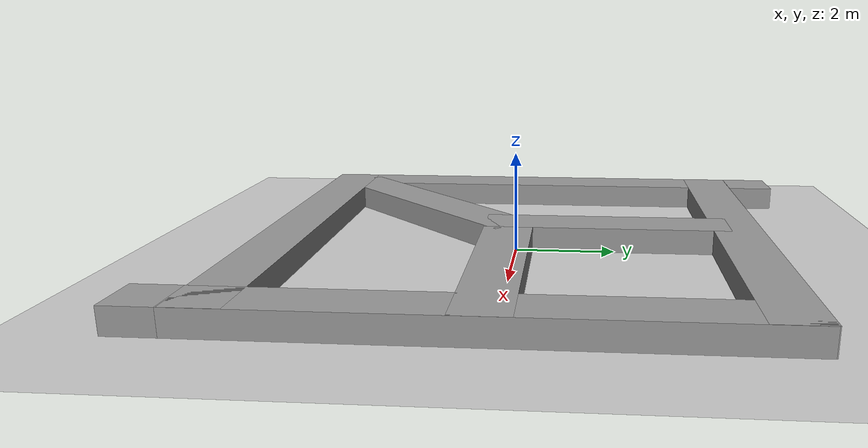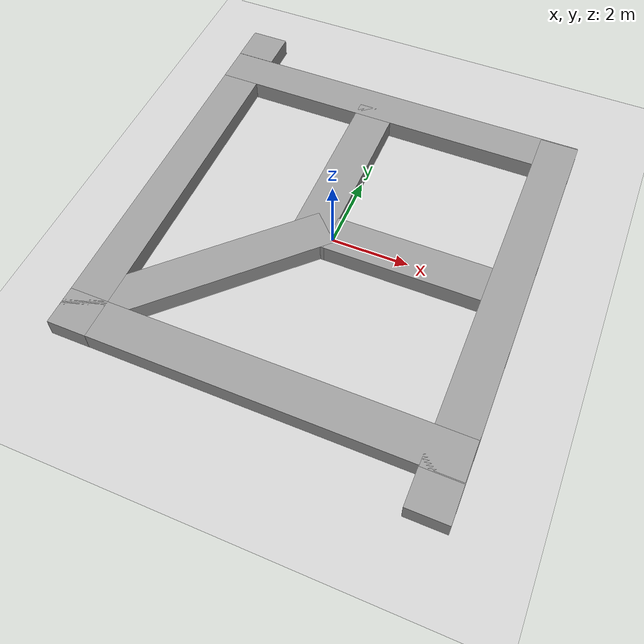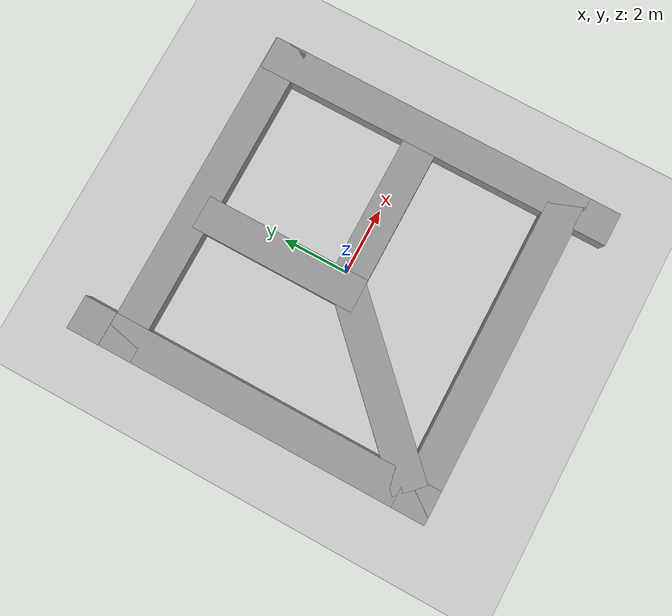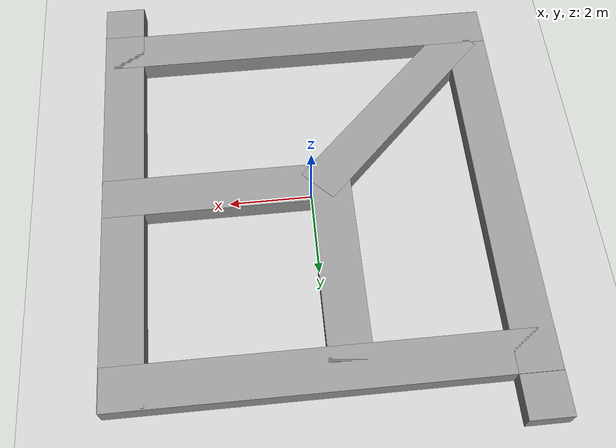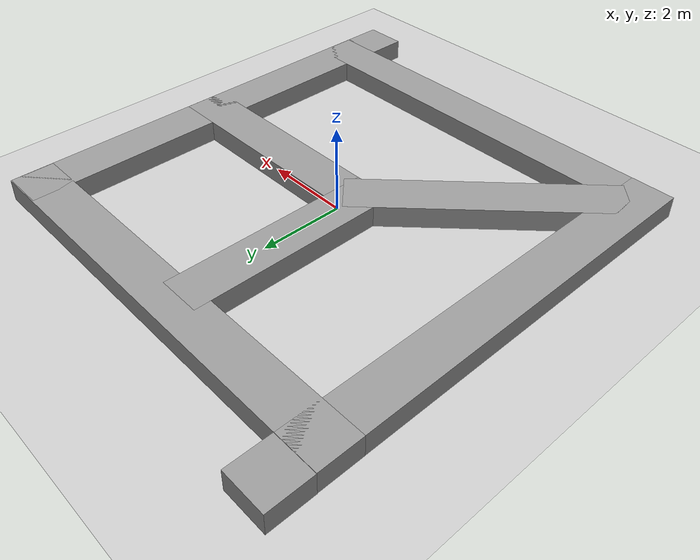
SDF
<sdf version="1.7">
 <world name="default">
  <light name="sun" type="directional">
   <pose>0 0 10 0 -0 0</pose>
   <diffuse>0.8 0.8 0.8 1</diffuse>
   <specular>0.2 0.2 0.2 1</specular>
   <attenuation>
    <range>1000</range>
    <constant>0.9</constant>
    <linear>0.01</linear>
    <quadratic>0.001</quadratic>
   </attenuation>
   <direction>-0.5 0.1 -0.9</direction>
   <spot><inner_angle>0</inner_angle><outer_angle>0</outer_angle><falloff>0</falloff></spot>
  </light>
  <model name="ground_plane">
   <static>1</static>
   <link name="link">
    <collision name="collision">
     <geometry><plane><normal>0 0 1</normal><size>100 100</size></plane></geometry>
     <surface>
      <contact><collide_bitmask>65535</collide_bitmask></contact>
      <friction><ode><mu>100</mu><mu2>50</mu2></ode></friction>
     </surface>
    </collision>
    <visual name="visual">
     <cast_shadows>0</cast_shadows>
     <geometry><plane><normal>0 0 1</normal><size>100 100</size></plane></geometry>
     <material>
      <script><uri>file://media/materials/scripts/gazebo.material</uri><name>Gazebo/Grey</name></script>
     </material>
    </visual>
   </link>
  </model>
  <gravity>0 0 -9.8</gravity>
  <magnetic_field>6e-06 2.3e-05 -4.2e-05</magnetic_field>
  <atmosphere type="adiabatic"/>
  <physics type="ode">
   <max_step_size>0.001</max_step_size>
   <real_time_factor>1</real_time_factor>
   <real_time_update_rate>1000</real_time_update_rate>
  </physics>
  <scene><ambient>0.4 0.4 0.4 1</ambient><background>0.7 0.7 0.7 1</background><shadows>1</shadows></scene>
  <spherical_coordinates>
   <surface_model>EARTH_WGS84</surface_model>
   <latitude_deg>0</latitude_deg>
   <longitude_deg>0</longitude_deg>
   <elevation>0</elevation>
   <heading_deg>0</heading_deg>
  </spherical_coordinates>
  <model name="Robocup_rescure_path1">
   <link name="Wall_10">
    <collision name="Wall_10_Collision">
     <geometry><box><size>10 1 0.5</size></box></geometry>
     <pose>0 0 0.25 0 -0 0</pose>
    </collision>
    <visual name="Wall_10_Visual">
     <pose>0 0 0.25 0 -0 0</pose>
     <geometry><box><size>10 1 0.5</size></box></geometry>
     <material>
      <script><uri>file://media/materials/scripts/gazebo.material</uri><name>Gazebo/Grey</name></script>
      <ambient>0.533333 0.541176 0.521569 1</ambient>
     </material>
     <meta><layer>0</layer></meta>
    </visual>
    <pose>-0.000637 -4.52388 0 0 -0 0</pose>
   </link>
   <link name="Wall_12">
    <collision name="Wall_12_Collision">
     <geometry><box><size>10 1 0.5</size></box></geometry>
     <pose>0 0 0.25 0 -0 0</pose>
    </collision>
    <visual name="Wall_12_Visual">
     <pose>0 0 0.25 0 -0 0</pose>
     <geometry><box><size>10 1 0.5</size></box></geometry>
     <material>
      <script><uri>file://media/materials/scripts/gazebo.material</uri><name>Gazebo/Grey</name></script>
      <ambient>0.533333 0.541176 0.521569 1</ambient>
     </material>
     <meta><layer>0</layer></meta>
    </visual>
    <pose>4.50927 -0.047068 0 0 -0 -1.5708</pose>
   </link>
   <link name="Wall_14">
    <collision name="Wall_14_Collision">
     <geometry><box><size>5 1 0.5</size></box></geometry>
     <pose>0 0 0.25 0 -0 0</pose>
    </collision>
    <visual name="Wall_14_Visual">
     <pose>0 0 0.25 0 -0 0</pose>
     <geometry><box><size>5 1 0.5</size></box></geometry>
     <material>
      <script><uri>file://media/materials/scripts/gazebo.material</uri><name>Gazebo/Grey</name></script>
      <ambient>0.533333 0.541176 0.521569 1</ambient>
     </material>
     <meta><layer>0</layer></meta>
    </visual>
    <pose>2.50723 -0.154528 0 0 -0 3.14159</pose>
   </link>
   <link name="Wall_16">
    <collision name="Wall_16_Collision">
     <geometry><box><size>5 1 0.5</size></box></geometry>
     <pose>0 0 0.25 0 -0 0</pose>
    </collision>
    <visual name="Wall_16_Visual">
     <pose>0 0 0.25 0 -0 0</pose>
     <geometry><box><size>5 1 0.5</size></box></geometry>
     <material>
      <script><uri>file://media/materials/scripts/gazebo.material</uri><name>Gazebo/Grey</name></script>
      <ambient>0.533333 0.541176 0.521569 1</ambient>
     </material>
     <meta><layer>0</layer></meta>
    </visual>
    <pose>-0.464535 1.84277 0 0 -0 -1.5708</pose>
   </link>
   <link name="Wall_18">
    <collision name="Wall_18_Collision">
     <geometry><box><size>6 1 0.5</size></box></geometry>
     <pose>0 0 0.25 0 -0 0</pose>
    </collision>
    <visual name="Wall_18_Visual">
     <pose>0 0 0.25 0 -0 0</pose>
     <geometry><box><size>6 1 0.5</size></box></geometry>
     <material>
      <script><uri>file://media/materials/scripts/gazebo.material</uri><name>Gazebo/Grey</name></script>
      <ambient>0.533333 0.541176 0.521569 1</ambient>
     </material>
     <meta><layer>0</layer></meta>
    </visual>
    <pose>-2.27208 -2.16094 0 0 -0 -2.35619</pose>
   </link>
   <link name="Wall_22">
    <collision name="Wall_22_Collision">
     <geometry><box><size>1.01 1 0.5</size></box></geometry>
     <pose>0 0 0.25 0 -0 0</pose>
    </collision>
    <visual name="Wall_22_Visual">
     <pose>0 0 0.25 0 -0 0</pose>
     <geometry><box><size>1.01 1 0.5</size></box></geometry>
     <material>
      <script><uri>file://media/materials/scripts/gazebo.material</uri><name>Gazebo/Grey</name></script>
      <ambient>1 1 1 1</ambient>
     </material>
     <meta><layer>0</layer></meta>
    </visual>
    <pose>4.50279 -5.47895 0 0 -0 0</pose>
   </link>
   <link name="Wall_24">
    <collision name="Wall_24_Collision">
     <geometry><box><size>1.01 1 0.5</size></box></geometry>
     <pose>0 0 0.25 0 -0 0</pose>
    </collision>
    <visual name="Wall_24_Visual">
     <pose>0 0 0.25 0 -0 0</pose>
     <geometry><box><size>1.01 1 0.5</size></box></geometry>
     <material>
      <script><uri>file://media/materials/scripts/gazebo.material</uri><name>Gazebo/Grey</name></script>
      <ambient>0 0 0 1</ambient>
     </material>
     <meta><layer>0</layer></meta>
    </visual>
    <pose>-4.50427 5.47895 0 0 -0 0</pose>
   </link>
   <link name="Wall_6">
    <collision name="Wall_6_Collision">
     <geometry><box><size>10 1 0.5</size></box></geometry>
     <pose>0 0 0.25 0 -0 0</pose>
    </collision>
    <visual name="Wall_6_Visual">
     <pose>0 0 0.25 0 -0 0</pose>
     <geometry><box><size>10 1 0.5</size></box></geometry>
     <material>
      <script><uri>file://media/materials/scripts/gazebo.material</uri><name>Gazebo/Grey</name></script>
      <ambient>0.533333 0.541176 0.521569 1</ambient>
     </material>
     <meta><layer>0</layer></meta>
    </visual>
    <pose>-4.50068 -0.027072 0 0 -0 -1.5708</pose>
   </link>
   <link name="Wall_8">
    <collision name="Wall_8_Collision">
     <geometry><box><size>10 1 0.5</size></box></geometry>
     <pose>0 0 0.25 0 -0 0</pose>
    </collision>
    <visual name="Wall_8_Visual">
     <pose>0 0 0.25 0 -0 0</pose>
     <geometry><box><size>10 1 0.5</size></box></geometry>
     <material>
      <script><uri>file://media/materials/scripts/gazebo.material</uri><name>Gazebo/Grey</name></script>
      <ambient>0.533333 0.541176 0.521569 1</ambient>
     </material>
     <meta><layer>0</layer></meta>
    </visual>
    <pose>-0.003132 4.47488 0 0 -0 0</pose>
   </link>
   <static>1</static>
  </model>
 </world>
</sdf>
